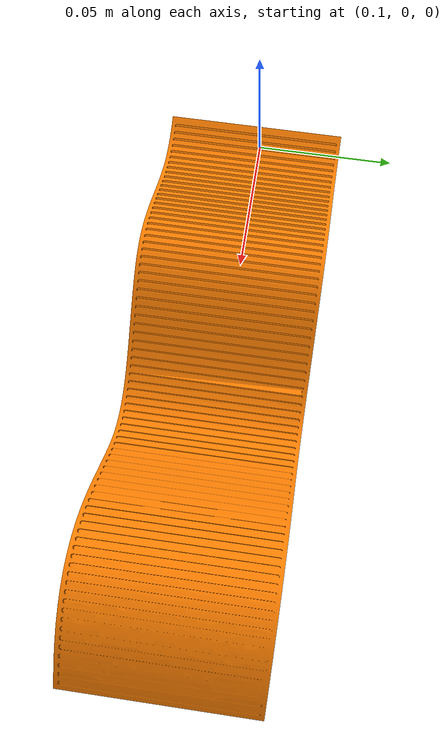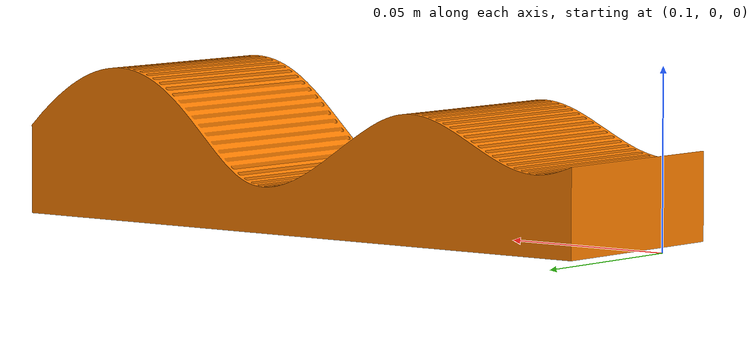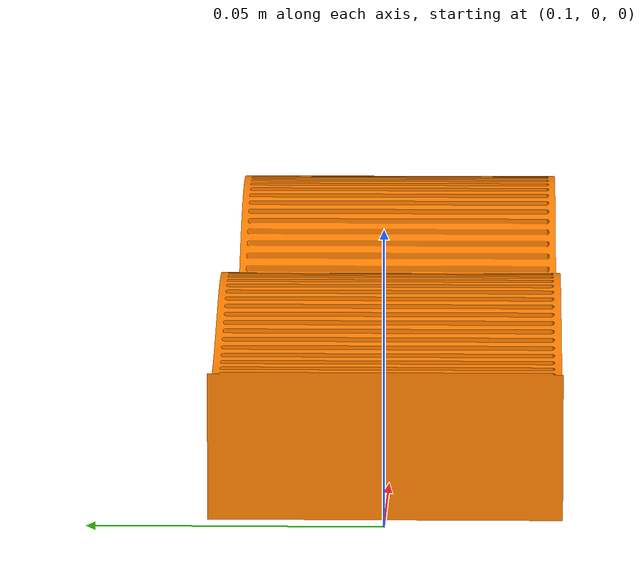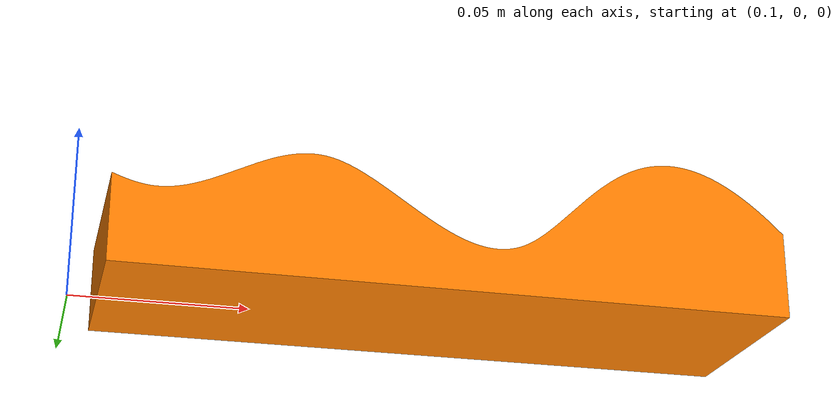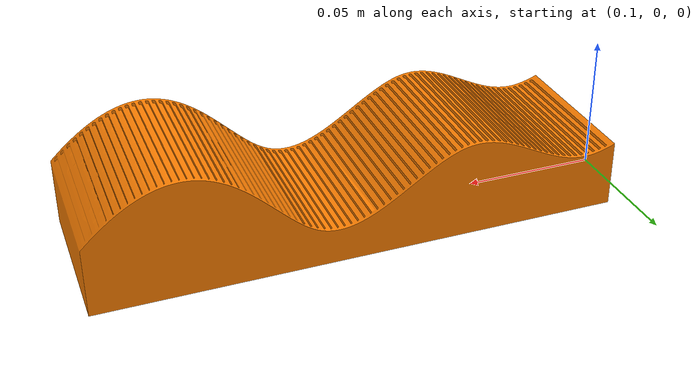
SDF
<?xml version="1.0" ?>
<sdf version="1.6">
  <model name="1mm_line">
    <static>true</static>
    <link name="link">
      <collision name="collision">
        <pose>0.3 -0.03 0 1.5708 0 3.14159</pose>
        <geometry>
          <mesh>
            <scale>0.0012 0.0012 0.0012</scale>
            <uri>model://1mm_line/meshes/1mm_line_test.stl</uri>
          </mesh>
        </geometry>
      </collision>
      <visual name="visual">
        <pose>0.3 -0.03 0 1.5708 0 3.14159</pose>
        <geometry>
          <mesh>
            <scale>0.0012 0.0012 0.0012</scale>
            <uri>model://1mm_line/meshes/1mm_line_test.stl</uri>
          </mesh>
        </geometry>
        <material>
          <ambient>1.0 0.5 0.0 1.0</ambient>
          <diffuse>1.0 0.5 0.0 1.0</diffuse>
          <specular>0.2 0.2 0.2 64</specular>
          <emissive>0.1 0.0 0.1 1.0</emissive>
        </material>
      </visual>
    </link>
  </model>
</sdf>
